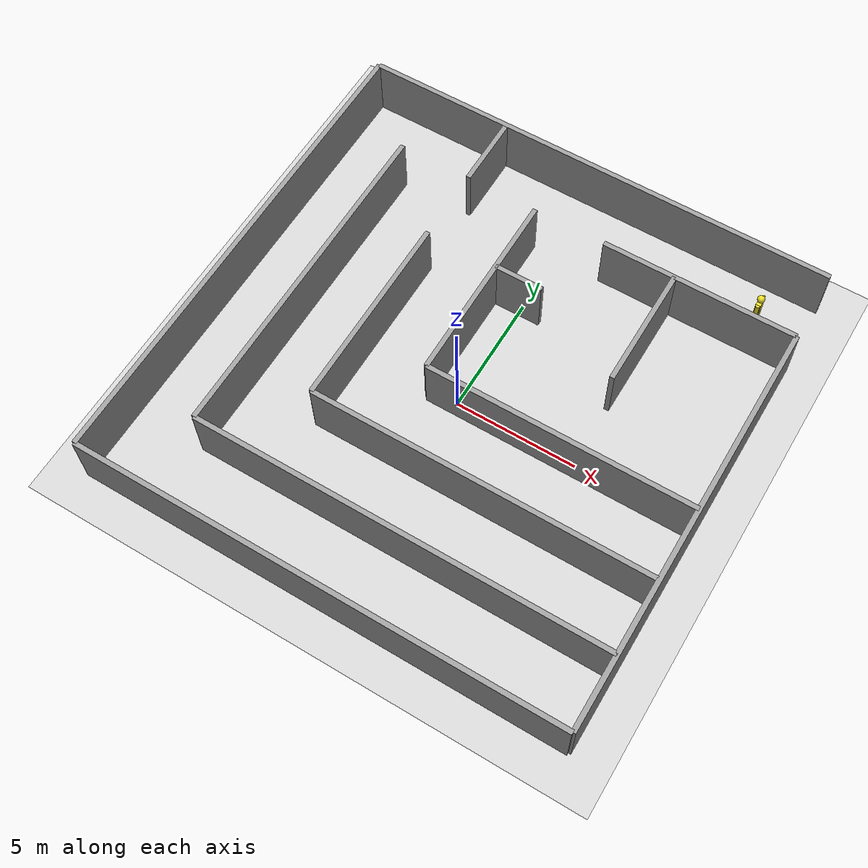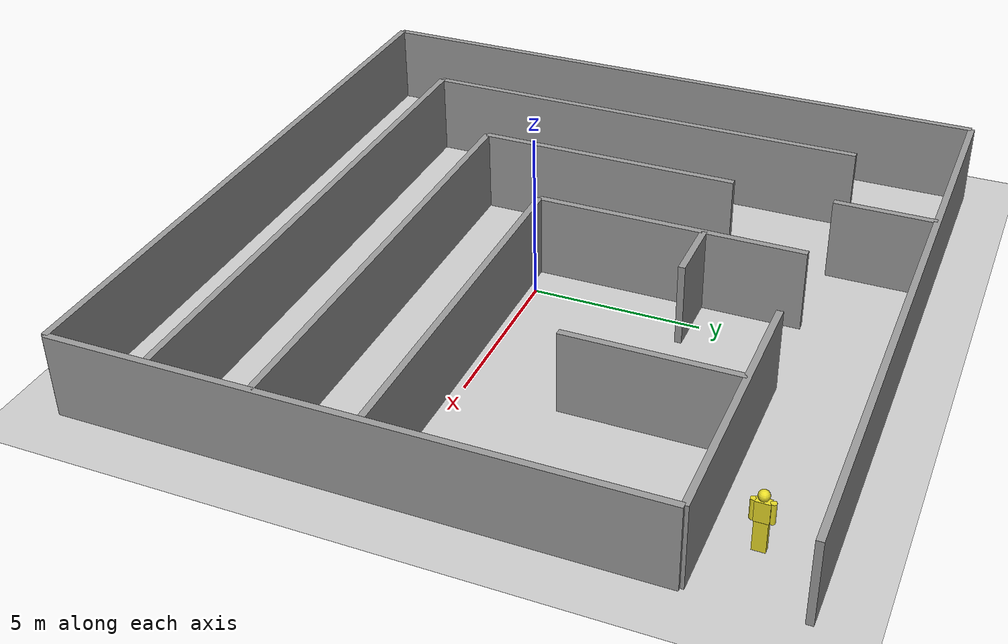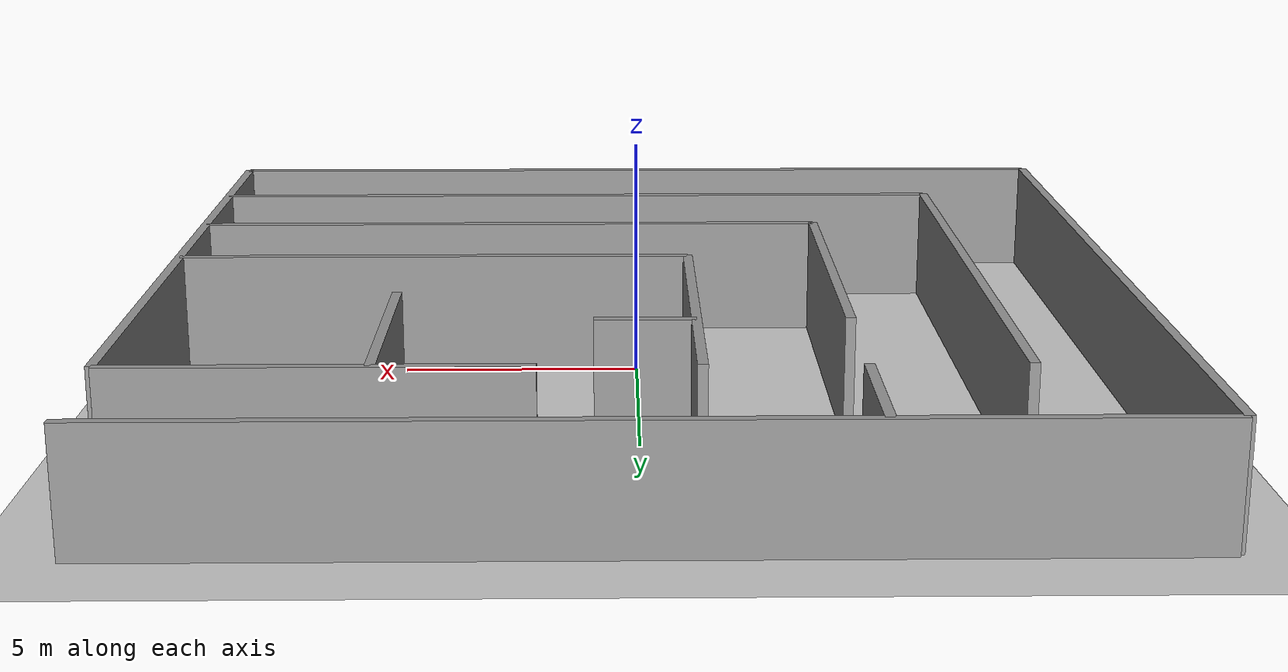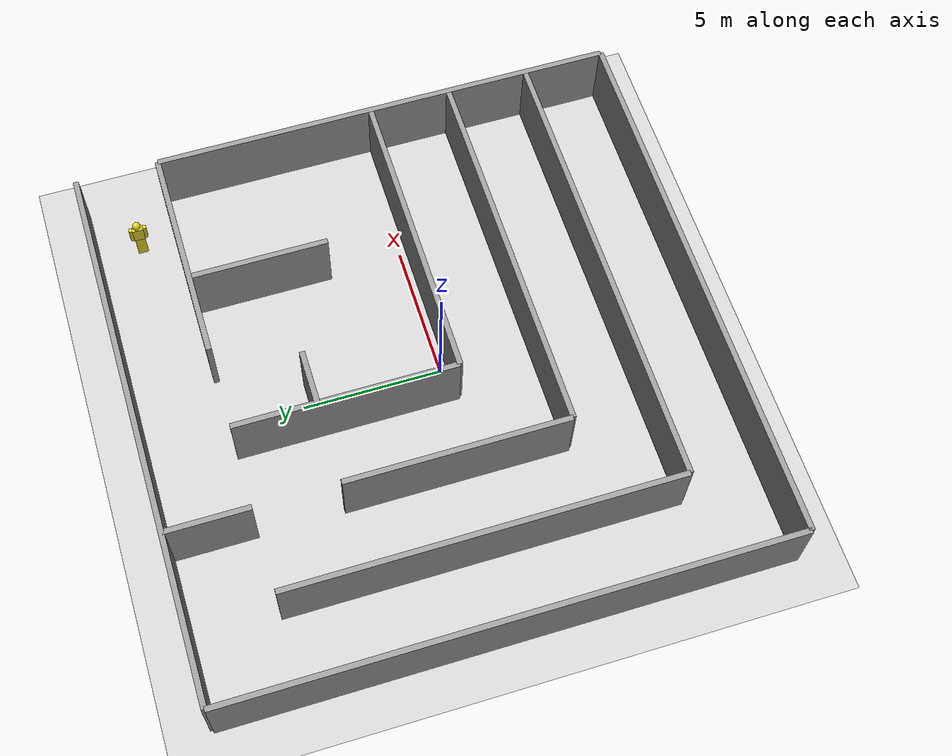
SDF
<sdf version="1.4">
 <world name="default">
  <light name="sun" type="directional">
   <pose>0 0 10 0 -0 0</pose>
   <diffuse>0.8 0.8 0.8 1</diffuse>
   <specular>0.2 0.2 0.2 1</specular>
   <attenuation>
    <range>1000</range>
    <constant>0.9</constant>
    <linear>0.01</linear>
    <quadratic>0.001</quadratic>
   </attenuation>
   <direction>-0.5 0.1 -0.9</direction>
  </light>
  <model name="ground_plane">
   <static>1</static>
   <link name="link">
    <collision name="collision">
     <geometry><plane><normal>0 0 1</normal><size>100 100</size></plane></geometry>
     <surface><friction><ode><mu>100</mu><mu2>50</mu2></ode></friction></surface>
    </collision>
    <visual name="visual">
     <cast_shadows>0</cast_shadows>
     <geometry><plane><normal>0 0 1</normal><size>100 100</size></plane></geometry>
     <material>
      <script><uri>file://media/materials/scripts/gazebo.material</uri><name>Gazebo/Grey</name></script>
     </material>
    </visual>
    <velocity_decay><linear>0</linear><angular>0</angular></velocity_decay>
   </link>
  </model>
  <physics type="ode">
   <max_step_size>0.001</max_step_size>
   <real_time_factor>1</real_time_factor>
   <real_time_update_rate>1000</real_time_update_rate>
   <gravity>0 0 -9.8</gravity>
  </physics>
  <scene><ambient>0.4 0.4 0.4 1</ambient><background>0.7 0.7 0.7 1</background><shadows>1</shadows></scene>
  <spherical_coordinates>
   <surface_model>EARTH_WGS84</surface_model>
   <latitude_deg>0</latitude_deg>
   <longitude_deg>0</longitude_deg>
   <elevation>0</elevation>
   <heading_deg>0</heading_deg>
  </spherical_coordinates>
  <model name="crazy_maze">
   <static>1</static>
   <link name="Wall_0">
    <pose>-10 -10 0 0 -0 1.5708</pose>
    <collision name="Wall_0_Collision">
     <pose>10 0 1.25 0 -0 0</pose>
     <geometry><box><size>20 0.2 2.5</size></box></geometry>
    </collision>
    <visual name="Wall_0_Visual">
     <pose>10 0 1.25 0 -0 0</pose>
     <geometry><box><size>20 0.2 2.5</size></box></geometry>
     <material>
      <script><uri>file://media/materials/scripts/gazebo.material</uri><name>Gazebo/Grey</name></script>
     </material>
    </visual>
    <velocity_decay><linear>0</linear><angular>0</angular></velocity_decay>
   </link>
   <link name="Wall_1">
    <pose>-10 -10 0 0 -0 0</pose>
    <collision name="Wall_1_Collision">
     <pose>10 0 1.25 0 -0 0</pose>
     <geometry><box><size>20 0.2 2.5</size></box></geometry>
    </collision>
    <visual name="Wall_1_Visual">
     <pose>10 0 1.25 0 -0 0</pose>
     <geometry><box><size>20 0.2 2.5</size></box></geometry>
     <material>
      <script><uri>file://media/materials/scripts/gazebo.material</uri><name>Gazebo/Grey</name></script>
     </material>
    </visual>
    <velocity_decay><linear>0</linear><angular>0</angular></velocity_decay>
   </link>
   <link name="Wall_2">
    <pose>10 -10 0 0 -0 1.5708</pose>
    <collision name="Wall_2_Collision">
     <pose>8.5 0 1.25 0 -0 0</pose>
     <geometry><box><size>17 0.2 2.5</size></box></geometry>
    </collision>
    <visual name="Wall_2_Visual">
     <pose>8.5 0 1.25 0 -0 0</pose>
     <geometry><box><size>17 0.2 2.5</size></box></geometry>
     <material>
      <script><uri>file://media/materials/scripts/gazebo.material</uri><name>Gazebo/Grey</name></script>
     </material>
    </visual>
    <velocity_decay><linear>0</linear><angular>0</angular></velocity_decay>
   </link>
   <link name="Wall_3">
    <pose>-10 10 0 0 -0 0</pose>
    <collision name="Wall_3_Collision">
     <pose>10 0 1.25 0 -0 0</pose>
     <geometry><box><size>20 0.2 2.5</size></box></geometry>
    </collision>
    <visual name="Wall_3_Visual">
     <pose>10 0 1.25 0 -0 0</pose>
     <geometry><box><size>20 0.2 2.5</size></box></geometry>
     <material>
      <script><uri>file://media/materials/scripts/gazebo.material</uri><name>Gazebo/Grey</name></script>
     </material>
    </visual>
    <velocity_decay><linear>0</linear><angular>0</angular></velocity_decay>
   </link>
   <link name="Wall_4">
    <pose>-7 -7 0 0 -0 0</pose>
    <collision name="Wall_4_Collision">
     <pose>8.5 0 1.25 0 -0 0</pose>
     <geometry><box><size>17 0.2 2.5</size></box></geometry>
    </collision>
    <visual name="Wall_4_Visual">
     <pose>8.5 0 1.25 0 -0 0</pose>
     <geometry><box><size>17 0.2 2.5</size></box></geometry>
     <material>
      <script><uri>file://media/materials/scripts/gazebo.material</uri><name>Gazebo/Grey</name></script>
     </material>
    </visual>
    <velocity_decay><linear>0</linear><angular>0</angular></velocity_decay>
   </link>
   <link name="Wall_5">
    <pose>-7 -7 0 0 -0 1.5708</pose>
    <collision name="Wall_5_Collision">
     <pose>7 0 1.25 0 -0 0</pose>
     <geometry><box><size>14 0.2 2.5</size></box></geometry>
    </collision>
    <visual name="Wall_5_Visual">
     <pose>7 0 1.25 0 -0 0</pose>
     <geometry><box><size>14 0.2 2.5</size></box></geometry>
     <material>
      <script><uri>file://media/materials/scripts/gazebo.material</uri><name>Gazebo/Grey</name></script>
     </material>
    </visual>
    <velocity_decay><linear>0</linear><angular>0</angular></velocity_decay>
   </link>
   <link name="Wall_6">
    <pose>-4 -4 0 0 -0 0</pose>
    <collision name="Wall_6_Collision">
     <pose>7 0 1.25 0 -0 0</pose>
     <geometry><box><size>14 0.2 2.5</size></box></geometry>
    </collision>
    <visual name="Wall_6_Visual">
     <pose>7 0 1.25 0 -0 0</pose>
     <geometry><box><size>14 0.2 2.5</size></box></geometry>
     <material>
      <script><uri>file://media/materials/scripts/gazebo.material</uri><name>Gazebo/Grey</name></script>
     </material>
    </visual>
    <velocity_decay><linear>0</linear><angular>0</angular></velocity_decay>
   </link>
   <link name="Wall_7">
    <pose>-4 -4 0 0 -0 1.5708</pose>
    <collision name="Wall_7_Collision">
     <pose>4 0 1.25 0 -0 0</pose>
     <geometry><box><size>8 0.2 2.5</size></box></geometry>
    </collision>
    <visual name="Wall_7_Visual">
     <pose>4 0 1.25 0 -0 0</pose>
     <geometry><box><size>8 0.2 2.5</size></box></geometry>
     <material>
      <script><uri>file://media/materials/scripts/gazebo.material</uri><name>Gazebo/Grey</name></script>
     </material>
    </visual>
    <velocity_decay><linear>0</linear><angular>0</angular></velocity_decay>
   </link>
   <link name="Wall_8">
    <pose>-1 -1 0 0 -0 0</pose>
    <collision name="Wall_8_Collision">
     <pose>5.5 0 1.25 0 -0 0</pose>
     <geometry><box><size>11 0.2 2.5</size></box></geometry>
    </collision>
    <visual name="Wall_8_Visual">
     <pose>5.5 0 1.25 0 -0 0</pose>
     <geometry><box><size>11 0.2 2.5</size></box></geometry>
     <material>
      <script><uri>file://media/materials/scripts/gazebo.material</uri><name>Gazebo/Grey</name></script>
     </material>
    </visual>
    <velocity_decay><linear>0</linear><angular>0</angular></velocity_decay>
   </link>
   <link name="Wall_9">
    <pose>-1 -1 0 0 -0 1.5708</pose>
    <collision name="Wall_9_Collision">
     <pose>4 0 1.25 0 -0 0</pose>
     <geometry><box><size>8 0.2 2.5</size></box></geometry>
    </collision>
    <visual name="Wall_9_Visual">
     <pose>4 0 1.25 0 -0 0</pose>
     <geometry><box><size>8 0.2 2.5</size></box></geometry>
     <material>
      <script><uri>file://media/materials/scripts/gazebo.material</uri><name>Gazebo/Grey</name></script>
     </material>
    </visual>
    <velocity_decay><linear>0</linear><angular>0</angular></velocity_decay>
   </link>
   <link name="Wall_10">
    <pose>-4 7 0 0 -0 1.5708</pose>
    <collision name="Wall_10_Collision">
     <pose>1.5 0 1.25 0 -0 0</pose>
     <geometry><box><size>3 0.2 2.5</size></box></geometry>
    </collision>
    <visual name="Wall_10_Visual">
     <pose>1.5 0 1.25 0 -0 0</pose>
     <geometry><box><size>3 0.2 2.5</size></box></geometry>
     <material>
      <script><uri>file://media/materials/scripts/gazebo.material</uri><name>Gazebo/Grey</name></script>
     </material>
    </visual>
    <velocity_decay><linear>0</linear><angular>0</angular></velocity_decay>
   </link>
   <link name="Wall_11">
    <pose>-1 4 0 0 -0 0</pose>
    <collision name="Wall_11_Collision">
     <pose>1 0 1.25 0 -0 0</pose>
     <geometry><box><size>2 0.2 2.5</size></box></geometry>
    </collision>
    <visual name="Wall_11_Visual">
     <pose>1 0 1.25 0 -0 0</pose>
     <geometry><box><size>2 0.2 2.5</size></box></geometry>
     <material>
      <script><uri>file://media/materials/scripts/gazebo.material</uri><name>Gazebo/Grey</name></script>
     </material>
    </visual>
    <velocity_decay><linear>0</linear><angular>0</angular></velocity_decay>
   </link>
   <link name="Wall_12">
    <pose>2 7 0 0 -0 0</pose>
    <collision name="Wall_12_Collision">
     <pose>4 0 1.25 0 -0 0</pose>
     <geometry><box><size>8 0.2 2.5</size></box></geometry>
    </collision>
    <visual name="Wall_12_Visual">
     <pose>4 0 1.25 0 -0 0</pose>
     <geometry><box><size>8 0.2 2.5</size></box></geometry>
     <material>
      <script><uri>file://media/materials/scripts/gazebo.material</uri><name>Gazebo/Grey</name></script>
     </material>
    </visual>
    <velocity_decay><linear>0</linear><angular>0</angular></velocity_decay>
   </link>
   <link name="Wall_13">
    <pose>5 2 0 0 -0 1.5708</pose>
    <collision name="Wall_13_Collision">
     <pose>2.5 0 1.25 0 -0 0</pose>
     <geometry><box><size>5 0.2 2.5</size></box></geometry>
    </collision>
    <visual name="Wall_13_Visual">
     <pose>2.5 0 1.25 0 -0 0</pose>
     <geometry><box><size>5 0.2 2.5</size></box></geometry>
     <material>
      <script><uri>file://media/materials/scripts/gazebo.material</uri><name>Gazebo/Grey</name></script>
     </material>
    </visual>
    <velocity_decay><linear>0</linear><angular>0</angular></velocity_decay>
   </link>
   <pose>-0.10595 0.663521 0 0 -0 0</pose>
  </model>
  <model name="simple_human">
   <static>1</static>
   <link name="body">
    <pose>0 0 1.2 0 -0 0</pose>
    <collision name="collision"><geometry><box><size>0.4 0.2 0.6</size></box></geometry></collision>
    <visual name="visual">
     <geometry><box><size>0.4 0.2 0.6</size></box></geometry>
     <material>
      <script><uri>file://media/materials/scripts/gazebo.material</uri><name>Gazebo/Yellow</name></script>
     </material>
    </visual>
    <velocity_decay><linear>0</linear><angular>0</angular></velocity_decay>
   </link>
   <link name="legs">
    <pose>0 0 0.45 0 -0 0</pose>
    <collision name="collision"><geometry><box><size>0.36 0.18 0.9</size></box></geometry></collision>
    <visual name="visual">
     <geometry><box><size>0.36 0.18 0.9</size></box></geometry>
     <material>
      <script><uri>file://media/materials/scripts/gazebo.material</uri><name>Gazebo/Yellow</name></script>
     </material>
    </visual>
    <velocity_decay><linear>0</linear><angular>0</angular></velocity_decay>
   </link>
   <link name="right_arm">
    <pose>0.24 0 1.2 0 -0 0</pose>
    <collision name="collision">
     <geometry><cylinder><radius>0.08</radius><length>0.6</length></cylinder></geometry>
    </collision>
    <visual name="visual">
     <geometry><cylinder><radius>0.08</radius><length>0.6</length></cylinder></geometry>
     <material>
      <script><uri>file://media/materials/scripts/gazebo.material</uri><name>Gazebo/Yellow</name></script>
     </material>
    </visual>
    <velocity_decay><linear>0</linear><angular>0</angular></velocity_decay>
   </link>
   <link name="left_arm">
    <pose>-0.24 0 1.2 0 -0 0</pose>
    <collision name="collision">
     <geometry><cylinder><radius>0.08</radius><length>0.6</length></cylinder></geometry>
    </collision>
    <visual name="visual">
     <geometry><cylinder><radius>0.08</radius><length>0.6</length></cylinder></geometry>
     <material>
      <script><uri>file://media/materials/scripts/gazebo.material</uri><name>Gazebo/Yellow</name></script>
     </material>
    </visual>
    <velocity_decay><linear>0</linear><angular>0</angular></velocity_decay>
   </link>
   <link name="head">
    <pose>0 0 1.65 0 -0 0</pose>
    <collision name="collision"><geometry><sphere><radius>0.15</radius></sphere></geometry></collision>
    <visual name="visual">
     <geometry><sphere><radius>0.15</radius></sphere></geometry>
     <material>
      <script><uri>file://media/materials/scripts/gazebo.material</uri><name>Gazebo/Yellow</name></script>
     </material>
    </visual>
    <velocity_decay><linear>0</linear><angular>0</angular></velocity_decay>
   </link>
   <pose>7.99002 8.98614 0 0 0 -1.56897</pose>
  </model>
 </world>
</sdf>
